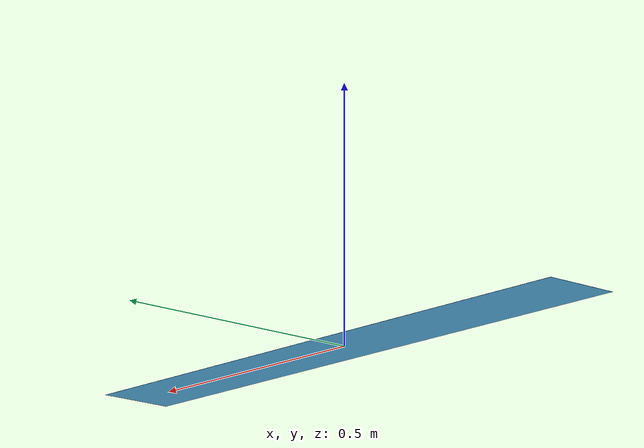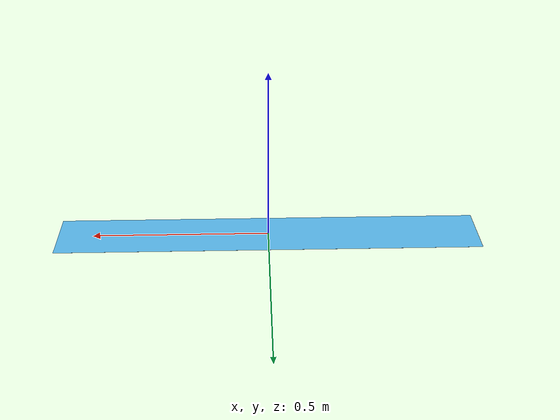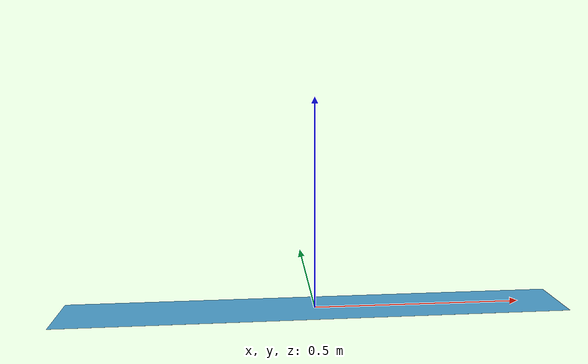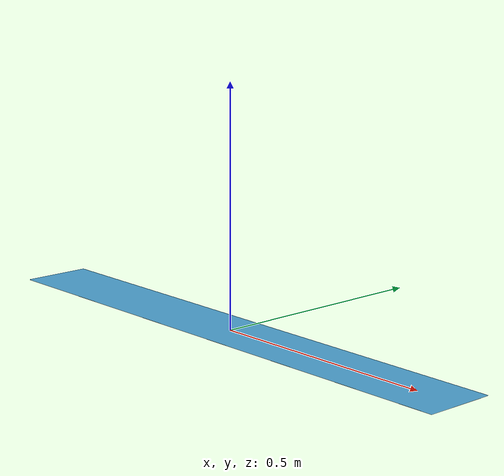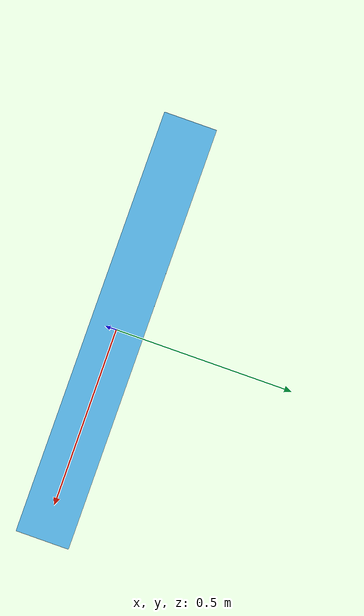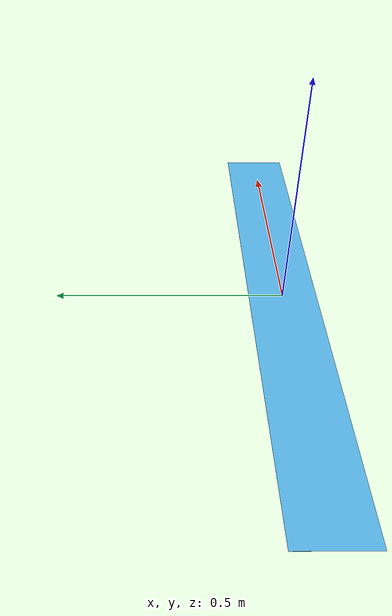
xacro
<?xml version="1.0"?>
    <!-- ros_topic should match with .items in openhab to update... -->
<robot xmlns:xacro="http://ros.org/wiki/xacro">
	<xacro:include filename="contactPlate.urdf.xacro" />

	<xacro:macro name="presence_sensor_macro">
		<link name="world"/>
		<xacro:contactPlate name="contact" parent="world" ros_topic="Door_Entrydoor" update_rate="10" width="1.2">
			<origin xyz="0 0.0 0" rpy="0 0 0"/>
		</xacro:contactPlate>
	</xacro:macro>

	<xacro:presence_sensor_macro/>
</robot>

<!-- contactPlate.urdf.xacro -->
<robot xmlns:xacro="http://ros.org/wiki/xacro">
	<xacro:macro name="contactPlate" params="name parent *origin ros_topic width update_rate">
		<joint name="${name}_joint" type="fixed">
			<xacro:insert_block name="origin" />
			<parent link="${parent}"/>
			<child link="${name}_link"/>
		</joint>

		<link name="${name}_link">
		<inertial>
				<mass value="1000.001" />
				<origin xyz="0 0 0" rpy="0 0 0" />
				<inertia ixx="0.000000017" ixy="0" ixz="0" iyy="0.000000017" iyz="0" izz="0.000000017" />
			</inertial>
			<visual>
				<origin xyz="0 0 0" rpy="0 0 0" />
				<geometry>
					<box size="${width} 0.15 0.0001" />
				</geometry>
			</visual>
			<collision name="${name}_collision">
				<origin xyz="0 0 0" rpy="0 0 0" />
				<geometry>
					<box size="${width} 0.15 0.0001" />
				</geometry>
			</collision>
		</link>

		<gazebo reference="${name}_link">
			<sensor name="${name}" type="contact">
				<always_on>true</always_on>
				<update_rate>${update_rate}</update_rate>
				<visualize>false</visualize>
				<pose>0.0 0.0 0.0 0.0 0.0 0.0</pose>
 				<plugin name="gazebo_ros_${name}_controller" filename="libais_gazebo_ros_binary_contact.so">
					<alwaysOn>true</alwaysOn>
					<updateRate>${update_rate}</updateRate>
					<frameName>world</frameName>
					<bumperTopicName>${ros_topic}</bumperTopicName>
				</plugin>
				<contact>
					<collision>${name}_link_collision</collision>
					<topic>${ros_topic}_b</topic>
				</contact>
			</sensor>
		</gazebo>

	</xacro:macro>

</robot>
